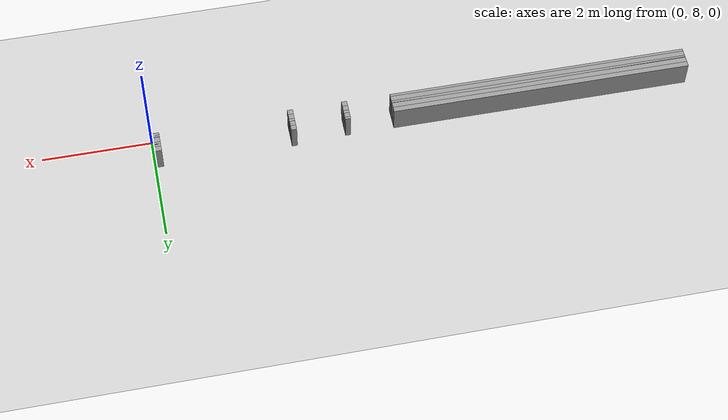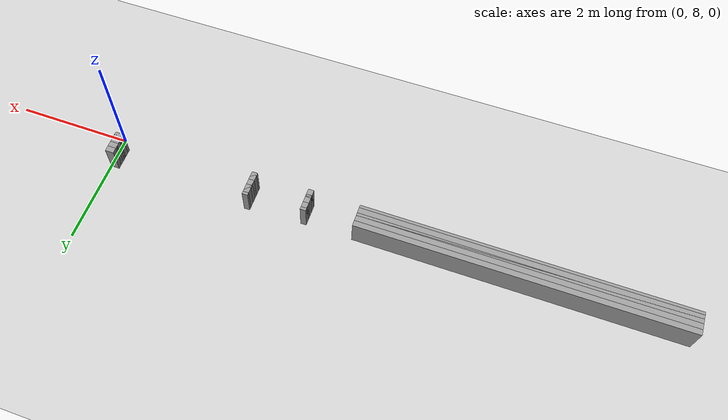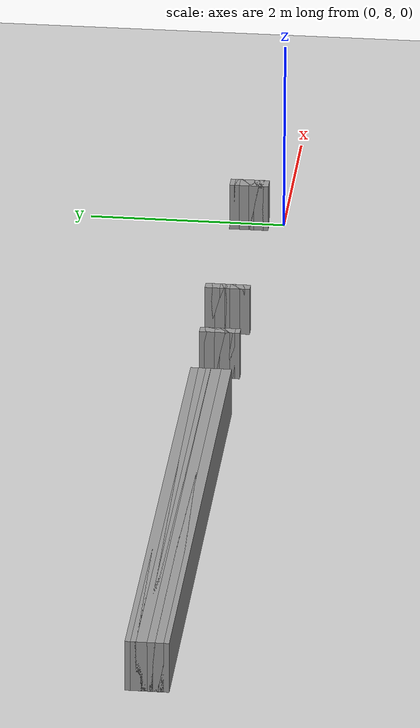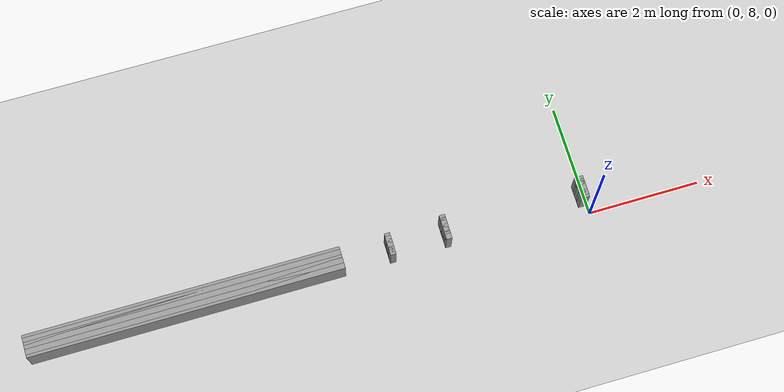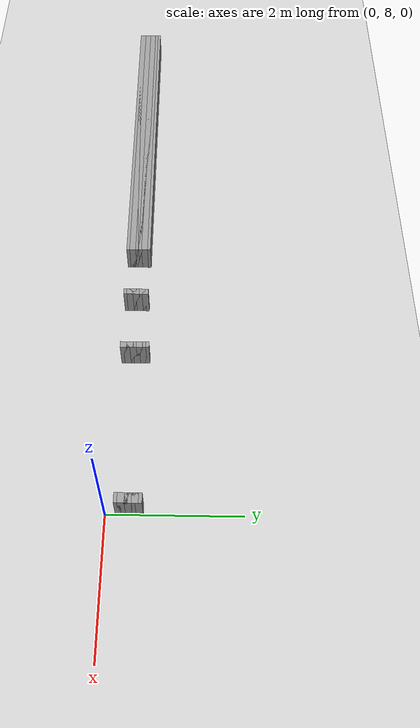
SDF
<sdf version="1.6">
 <world name="GridMap">
  <include><uri>model://sun</uri></include>
  <include><uri>model://ground_plane</uri></include>
  <model name="GridMap">
   <link name="Wall_(51.0,163.0)">
    <collision name="Wall_(51.0,163.0)_Collision">
     <geometry><box><size>0.1 0.1 0.5</size></box></geometry>
     <pose>-2.5500000000000003 8.15 0.25 0 -0 0</pose>
    </collision>
    <inertial>
     <mass>0.5</mass>
     <pose>0 0.01 0 0 0 0</pose>
     <inertia><ixx>0.004</ixx><ixy>0.001</ixy><ixz>0</ixz><iyy>0.006</iyy><iyz>0</iyz><izz>0.007</izz></inertia>
    </inertial>
    <visual name="Wall_(51.0,163.0)_Visual">
     <geometry><box><size>0.1 0.1 0.5</size></box></geometry>
     <pose>-2.5500000000000003 8.15 0.25 0 -0 0</pose>
     <material>
      <script><uri>file://media/materials/scripts/gazebo.material</uri><name>Gazebo/Grey</name></script>
      <ambient>1 1 1 1</ambient>
     </material>
     <meta><layer>0</layer></meta>
    </visual>
   </link>
   <link name="Wall_(71.0,163.0)">
    <collision name="Wall_(71.0,163.0)_Collision">
     <geometry><box><size>0.1 0.1 0.5</size></box></geometry>
     <pose>-3.5500000000000003 8.15 0.25 0 -0 0</pose>
    </collision>
    <inertial>
     <mass>0.5</mass>
     <pose>0 0.01 0 0 0 0</pose>
     <inertia><ixx>0.004</ixx><ixy>0.001</ixy><ixz>0</ixz><iyy>0.006</iyy><iyz>0</iyz><izz>0.007</izz></inertia>
    </inertial>
    <visual name="Wall_(71.0,163.0)_Visual">
     <geometry><box><size>0.1 0.1 0.5</size></box></geometry>
     <pose>-3.5500000000000003 8.15 0.25 0 -0 0</pose>
     <material>
      <script><uri>file://media/materials/scripts/gazebo.material</uri><name>Gazebo/Grey</name></script>
      <ambient>1 1 1 1</ambient>
     </material>
     <meta><layer>0</layer></meta>
    </visual>
   </link>
   <link name="Wall_(143.5,163.0)">
    <collision name="Wall_(143.5,163.0)_Collision">
     <geometry><box><size>5.550000000000001 0.1 0.5</size></box></geometry>
     <pose>-7.175000000000001 8.15 0.25 0 -0 0</pose>
    </collision>
    <inertial>
     <mass>0.5</mass>
     <pose>0 0.01 0 0 0 0</pose>
     <inertia><ixx>0.004</ixx><ixy>0.001</ixy><ixz>0</ixz><iyy>0.006</iyy><iyz>0</iyz><izz>0.007</izz></inertia>
    </inertial>
    <visual name="Wall_(143.5,163.0)_Visual">
     <geometry><box><size>5.550000000000001 0.1 0.5</size></box></geometry>
     <pose>-7.175000000000001 8.15 0.25 0 -0 0</pose>
     <material>
      <script><uri>file://media/materials/scripts/gazebo.material</uri><name>Gazebo/Grey</name></script>
      <ambient>1 1 1 1</ambient>
     </material>
     <meta><layer>0</layer></meta>
    </visual>
   </link>
   <link name="Wall_(1.5,164.0)">
    <collision name="Wall_(1.5,164.0)_Collision">
     <geometry><box><size>0.15000000000000002 0.1 0.5</size></box></geometry>
     <pose>-0.07500000000000001 8.200000000000001 0.25 0 -0 0</pose>
    </collision>
    <inertial>
     <mass>0.5</mass>
     <pose>0 0.01 0 0 0 0</pose>
     <inertia><ixx>0.004</ixx><ixy>0.001</ixy><ixz>0</ixz><iyy>0.006</iyy><iyz>0</iyz><izz>0.007</izz></inertia>
    </inertial>
    <visual name="Wall_(1.5,164.0)_Visual">
     <geometry><box><size>0.15000000000000002 0.1 0.5</size></box></geometry>
     <pose>-0.07500000000000001 8.200000000000001 0.25 0 -0 0</pose>
     <material>
      <script><uri>file://media/materials/scripts/gazebo.material</uri><name>Gazebo/Grey</name></script>
      <ambient>1 1 1 1</ambient>
     </material>
     <meta><layer>0</layer></meta>
    </visual>
   </link>
   <link name="Wall_(51.0,164.0)">
    <collision name="Wall_(51.0,164.0)_Collision">
     <geometry><box><size>0.1 0.1 0.5</size></box></geometry>
     <pose>-2.5500000000000003 8.200000000000001 0.25 0 -0 0</pose>
    </collision>
    <inertial>
     <mass>0.5</mass>
     <pose>0 0.01 0 0 0 0</pose>
     <inertia><ixx>0.004</ixx><ixy>0.001</ixy><ixz>0</ixz><iyy>0.006</iyy><iyz>0</iyz><izz>0.007</izz></inertia>
    </inertial>
    <visual name="Wall_(51.0,164.0)_Visual">
     <geometry><box><size>0.1 0.1 0.5</size></box></geometry>
     <pose>-2.5500000000000003 8.200000000000001 0.25 0 -0 0</pose>
     <material>
      <script><uri>file://media/materials/scripts/gazebo.material</uri><name>Gazebo/Grey</name></script>
      <ambient>1 1 1 1</ambient>
     </material>
     <meta><layer>0</layer></meta>
    </visual>
   </link>
   <link name="Wall_(71.0,164.0)">
    <collision name="Wall_(71.0,164.0)_Collision">
     <geometry><box><size>0.1 0.1 0.5</size></box></geometry>
     <pose>-3.5500000000000003 8.200000000000001 0.25 0 -0 0</pose>
    </collision>
    <inertial>
     <mass>0.5</mass>
     <pose>0 0.01 0 0 0 0</pose>
     <inertia><ixx>0.004</ixx><ixy>0.001</ixy><ixz>0</ixz><iyy>0.006</iyy><iyz>0</iyz><izz>0.007</izz></inertia>
    </inertial>
    <visual name="Wall_(71.0,164.0)_Visual">
     <geometry><box><size>0.1 0.1 0.5</size></box></geometry>
     <pose>-3.5500000000000003 8.200000000000001 0.25 0 -0 0</pose>
     <material>
      <script><uri>file://media/materials/scripts/gazebo.material</uri><name>Gazebo/Grey</name></script>
      <ambient>1 1 1 1</ambient>
     </material>
     <meta><layer>0</layer></meta>
    </visual>
   </link>
   <link name="Wall_(143.5,164.0)">
    <collision name="Wall_(143.5,164.0)_Collision">
     <geometry><box><size>5.550000000000001 0.1 0.5</size></box></geometry>
     <pose>-7.175000000000001 8.200000000000001 0.25 0 -0 0</pose>
    </collision>
    <inertial>
     <mass>0.5</mass>
     <pose>0 0.01 0 0 0 0</pose>
     <inertia><ixx>0.004</ixx><ixy>0.001</ixy><ixz>0</ixz><iyy>0.006</iyy><iyz>0</iyz><izz>0.007</izz></inertia>
    </inertial>
    <visual name="Wall_(143.5,164.0)_Visual">
     <geometry><box><size>5.550000000000001 0.1 0.5</size></box></geometry>
     <pose>-7.175000000000001 8.200000000000001 0.25 0 -0 0</pose>
     <material>
      <script><uri>file://media/materials/scripts/gazebo.material</uri><name>Gazebo/Grey</name></script>
      <ambient>1 1 1 1</ambient>
     </material>
     <meta><layer>0</layer></meta>
    </visual>
   </link>
   <link name="Wall_(1.5,165.0)">
    <collision name="Wall_(1.5,165.0)_Collision">
     <geometry><box><size>0.15000000000000002 0.1 0.5</size></box></geometry>
     <pose>-0.07500000000000001 8.25 0.25 0 -0 0</pose>
    </collision>
    <inertial>
     <mass>0.5</mass>
     <pose>0 0.01 0 0 0 0</pose>
     <inertia><ixx>0.004</ixx><ixy>0.001</ixy><ixz>0</ixz><iyy>0.006</iyy><iyz>0</iyz><izz>0.007</izz></inertia>
    </inertial>
    <visual name="Wall_(1.5,165.0)_Visual">
     <geometry><box><size>0.15000000000000002 0.1 0.5</size></box></geometry>
     <pose>-0.07500000000000001 8.25 0.25 0 -0 0</pose>
     <material>
      <script><uri>file://media/materials/scripts/gazebo.material</uri><name>Gazebo/Grey</name></script>
      <ambient>1 1 1 1</ambient>
     </material>
     <meta><layer>0</layer></meta>
    </visual>
   </link>
   <link name="Wall_(51.0,165.0)">
    <collision name="Wall_(51.0,165.0)_Collision">
     <geometry><box><size>0.1 0.1 0.5</size></box></geometry>
     <pose>-2.5500000000000003 8.25 0.25 0 -0 0</pose>
    </collision>
    <inertial>
     <mass>0.5</mass>
     <pose>0 0.01 0 0 0 0</pose>
     <inertia><ixx>0.004</ixx><ixy>0.001</ixy><ixz>0</ixz><iyy>0.006</iyy><iyz>0</iyz><izz>0.007</izz></inertia>
    </inertial>
    <visual name="Wall_(51.0,165.0)_Visual">
     <geometry><box><size>0.1 0.1 0.5</size></box></geometry>
     <pose>-2.5500000000000003 8.25 0.25 0 -0 0</pose>
     <material>
      <script><uri>file://media/materials/scripts/gazebo.material</uri><name>Gazebo/Grey</name></script>
      <ambient>1 1 1 1</ambient>
     </material>
     <meta><layer>0</layer></meta>
    </visual>
   </link>
   <link name="Wall_(71.0,165.0)">
    <collision name="Wall_(71.0,165.0)_Collision">
     <geometry><box><size>0.1 0.1 0.5</size></box></geometry>
     <pose>-3.5500000000000003 8.25 0.25 0 -0 0</pose>
    </collision>
    <inertial>
     <mass>0.5</mass>
     <pose>0 0.01 0 0 0 0</pose>
     <inertia><ixx>0.004</ixx><ixy>0.001</ixy><ixz>0</ixz><iyy>0.006</iyy><iyz>0</iyz><izz>0.007</izz></inertia>
    </inertial>
    <visual name="Wall_(71.0,165.0)_Visual">
     <geometry><box><size>0.1 0.1 0.5</size></box></geometry>
     <pose>-3.5500000000000003 8.25 0.25 0 -0 0</pose>
     <material>
      <script><uri>file://media/materials/scripts/gazebo.material</uri><name>Gazebo/Grey</name></script>
      <ambient>1 1 1 1</ambient>
     </material>
     <meta><layer>0</layer></meta>
    </visual>
   </link>
   <link name="Wall_(143.5,165.0)">
    <collision name="Wall_(143.5,165.0)_Collision">
     <geometry><box><size>5.550000000000001 0.1 0.5</size></box></geometry>
     <pose>-7.175000000000001 8.25 0.25 0 -0 0</pose>
    </collision>
    <inertial>
     <mass>0.5</mass>
     <pose>0 0.01 0 0 0 0</pose>
     <inertia><ixx>0.004</ixx><ixy>0.001</ixy><ixz>0</ixz><iyy>0.006</iyy><iyz>0</iyz><izz>0.007</izz></inertia>
    </inertial>
    <visual name="Wall_(143.5,165.0)_Visual">
     <geometry><box><size>5.550000000000001 0.1 0.5</size></box></geometry>
     <pose>-7.175000000000001 8.25 0.25 0 -0 0</pose>
     <material>
      <script><uri>file://media/materials/scripts/gazebo.material</uri><name>Gazebo/Grey</name></script>
      <ambient>1 1 1 1</ambient>
     </material>
     <meta><layer>0</layer></meta>
    </visual>
   </link>
   <link name="Wall_(1.5,166.0)">
    <collision name="Wall_(1.5,166.0)_Collision">
     <geometry><box><size>0.15000000000000002 0.1 0.5</size></box></geometry>
     <pose>-0.07500000000000001 8.3 0.25 0 -0 0</pose>
    </collision>
    <inertial>
     <mass>0.5</mass>
     <pose>0 0.01 0 0 0 0</pose>
     <inertia><ixx>0.004</ixx><ixy>0.001</ixy><ixz>0</ixz><iyy>0.006</iyy><iyz>0</iyz><izz>0.007</izz></inertia>
    </inertial>
    <visual name="Wall_(1.5,166.0)_Visual">
     <geometry><box><size>0.15000000000000002 0.1 0.5</size></box></geometry>
     <pose>-0.07500000000000001 8.3 0.25 0 -0 0</pose>
     <material>
      <script><uri>file://media/materials/scripts/gazebo.material</uri><name>Gazebo/Grey</name></script>
      <ambient>1 1 1 1</ambient>
     </material>
     <meta><layer>0</layer></meta>
    </visual>
   </link>
   <link name="Wall_(51.0,166.0)">
    <collision name="Wall_(51.0,166.0)_Collision">
     <geometry><box><size>0.1 0.1 0.5</size></box></geometry>
     <pose>-2.5500000000000003 8.3 0.25 0 -0 0</pose>
    </collision>
    <inertial>
     <mass>0.5</mass>
     <pose>0 0.01 0 0 0 0</pose>
     <inertia><ixx>0.004</ixx><ixy>0.001</ixy><ixz>0</ixz><iyy>0.006</iyy><iyz>0</iyz><izz>0.007</izz></inertia>
    </inertial>
    <visual name="Wall_(51.0,166.0)_Visual">
     <geometry><box><size>0.1 0.1 0.5</size></box></geometry>
     <pose>-2.5500000000000003 8.3 0.25 0 -0 0</pose>
     <material>
      <script><uri>file://media/materials/scripts/gazebo.material</uri><name>Gazebo/Grey</name></script>
      <ambient>1 1 1 1</ambient>
     </material>
     <meta><layer>0</layer></meta>
    </visual>
   </link>
   <link name="Wall_(71.0,166.0)">
    <collision name="Wall_(71.0,166.0)_Collision">
     <geometry><box><size>0.1 0.1 0.5</size></box></geometry>
     <pose>-3.5500000000000003 8.3 0.25 0 -0 0</pose>
    </collision>
    <inertial>
     <mass>0.5</mass>
     <pose>0 0.01 0 0 0 0</pose>
     <inertia><ixx>0.004</ixx><ixy>0.001</ixy><ixz>0</ixz><iyy>0.006</iyy><iyz>0</iyz><izz>0.007</izz></inertia>
    </inertial>
    <visual name="Wall_(71.0,166.0)_Visual">
     <geometry><box><size>0.1 0.1 0.5</size></box></geometry>
     <pose>-3.5500000000000003 8.3 0.25 0 -0 0</pose>
     <material>
      <script><uri>file://media/materials/scripts/gazebo.material</uri><name>Gazebo/Grey</name></script>
      <ambient>1 1 1 1</ambient>
     </material>
     <meta><layer>0</layer></meta>
    </visual>
   </link>
   <link name="Wall_(143.5,166.0)">
    <collision name="Wall_(143.5,166.0)_Collision">
     <geometry><box><size>5.550000000000001 0.1 0.5</size></box></geometry>
     <pose>-7.175000000000001 8.3 0.25 0 -0 0</pose>
    </collision>
    <inertial>
     <mass>0.5</mass>
     <pose>0 0.01 0 0 0 0</pose>
     <inertia><ixx>0.004</ixx><ixy>0.001</ixy><ixz>0</ixz><iyy>0.006</iyy><iyz>0</iyz><izz>0.007</izz></inertia>
    </inertial>
    <visual name="Wall_(143.5,166.0)_Visual">
     <geometry><box><size>5.550000000000001 0.1 0.5</size></box></geometry>
     <pose>-7.175000000000001 8.3 0.25 0 -0 0</pose>
     <material>
      <script><uri>file://media/materials/scripts/gazebo.material</uri><name>Gazebo/Grey</name></script>
      <ambient>1 1 1 1</ambient>
     </material>
     <meta><layer>0</layer></meta>
    </visual>
   </link>
   <link name="Wall_(1.5,167.0)">
    <collision name="Wall_(1.5,167.0)_Collision">
     <geometry><box><size>0.15000000000000002 0.1 0.5</size></box></geometry>
     <pose>-0.07500000000000001 8.35 0.25 0 -0 0</pose>
    </collision>
    <inertial>
     <mass>0.5</mass>
     <pose>0 0.01 0 0 0 0</pose>
     <inertia><ixx>0.004</ixx><ixy>0.001</ixy><ixz>0</ixz><iyy>0.006</iyy><iyz>0</iyz><izz>0.007</izz></inertia>
    </inertial>
    <visual name="Wall_(1.5,167.0)_Visual">
     <geometry><box><size>0.15000000000000002 0.1 0.5</size></box></geometry>
     <pose>-0.07500000000000001 8.35 0.25 0 -0 0</pose>
     <material>
      <script><uri>file://media/materials/scripts/gazebo.material</uri><name>Gazebo/Grey</name></script>
      <ambient>1 1 1 1</ambient>
     </material>
     <meta><layer>0</layer></meta>
    </visual>
   </link>
   <link name="Wall_(51.0,167.0)">
    <collision name="Wall_(51.0,167.0)_Collision">
     <geometry><box><size>0.1 0.1 0.5</size></box></geometry>
     <pose>-2.5500000000000003 8.35 0.25 0 -0 0</pose>
    </collision>
    <inertial>
     <mass>0.5</mass>
     <pose>0 0.01 0 0 0 0</pose>
     <inertia><ixx>0.004</ixx><ixy>0.001</ixy><ixz>0</ixz><iyy>0.006</iyy><iyz>0</iyz><izz>0.007</izz></inertia>
    </inertial>
    <visual name="Wall_(51.0,167.0)_Visual">
     <geometry><box><size>0.1 0.1 0.5</size></box></geometry>
     <pose>-2.5500000000000003 8.35 0.25 0 -0 0</pose>
     <material>
      <script><uri>file://media/materials/scripts/gazebo.material</uri><name>Gazebo/Grey</name></script>
      <ambient>1 1 1 1</ambient>
     </material>
     <meta><layer>0</layer></meta>
    </visual>
   </link>
   <link name="Wall_(71.0,167.0)">
    <collision name="Wall_(71.0,167.0)_Collision">
     <geometry><box><size>0.1 0.1 0.5</size></box></geometry>
     <pose>-3.5500000000000003 8.35 0.25 0 -0 0</pose>
    </collision>
    <inertial>
     <mass>0.5</mass>
     <pose>0 0.01 0 0 0 0</pose>
     <inertia><ixx>0.004</ixx><ixy>0.001</ixy><ixz>0</ixz><iyy>0.006</iyy><iyz>0</iyz><izz>0.007</izz></inertia>
    </inertial>
    <visual name="Wall_(71.0,167.0)_Visual">
     <geometry><box><size>0.1 0.1 0.5</size></box></geometry>
     <pose>-3.5500000000000003 8.35 0.25 0 -0 0</pose>
     <material>
      <script><uri>file://media/materials/scripts/gazebo.material</uri><name>Gazebo/Grey</name></script>
      <ambient>1 1 1 1</ambient>
     </material>
     <meta><layer>0</layer></meta>
    </visual>
   </link>
   <link name="Wall_(143.5,167.0)">
    <collision name="Wall_(143.5,167.0)_Collision">
     <geometry><box><size>5.550000000000001 0.1 0.5</size></box></geometry>
     <pose>-7.175000000000001 8.35 0.25 0 -0 0</pose>
    </collision>
    <inertial>
     <mass>0.5</mass>
     <pose>0 0.01 0 0 0 0</pose>
     <inertia><ixx>0.004</ixx><ixy>0.001</ixy><ixz>0</ixz><iyy>0.006</iyy><iyz>0</iyz><izz>0.007</izz></inertia>
    </inertial>
    <visual name="Wall_(143.5,167.0)_Visual">
     <geometry><box><size>5.550000000000001 0.1 0.5</size></box></geometry>
     <pose>-7.175000000000001 8.35 0.25 0 -0 0</pose>
     <material>
      <script><uri>file://media/materials/scripts/gazebo.material</uri><name>Gazebo/Grey</name></script>
      <ambient>1 1 1 1</ambient>
     </material>
     <meta><layer>0</layer></meta>
    </visual>
   </link>
   <link name="Wall_(1.5,168.0)">
    <collision name="Wall_(1.5,168.0)_Collision">
     <geometry><box><size>0.15000000000000002 0.1 0.5</size></box></geometry>
     <pose>-0.07500000000000001 8.4 0.25 0 -0 0</pose>
    </collision>
    <inertial>
     <mass>0.5</mass>
     <pose>0 0.01 0 0 0 0</pose>
     <inertia><ixx>0.004</ixx><ixy>0.001</ixy><ixz>0</ixz><iyy>0.006</iyy><iyz>0</iyz><izz>0.007</izz></inertia>
    </inertial>
    <visual name="Wall_(1.5,168.0)_Visual">
     <geometry><box><size>0.15000000000000002 0.1 0.5</size></box></geometry>
     <pose>-0.07500000000000001 8.4 0.25 0 -0 0</pose>
     <material>
      <script><uri>file://media/materials/scripts/gazebo.material</uri><name>Gazebo/Grey</name></script>
      <ambient>1 1 1 1</ambient>
     </material>
     <meta><layer>0</layer></meta>
    </visual>
   </link>
   <link name="Wall_(51.0,168.0)">
    <collision name="Wall_(51.0,168.0)_Collision">
     <geometry><box><size>0.1 0.1 0.5</size></box></geometry>
     <pose>-2.5500000000000003 8.4 0.25 0 -0 0</pose>
    </collision>
    <inertial>
     <mass>0.5</mass>
     <pose>0 0.01 0 0 0 0</pose>
     <inertia><ixx>0.004</ixx><ixy>0.001</ixy><ixz>0</ixz><iyy>0.006</iyy><iyz>0</iyz><izz>0.007</izz></inertia>
    </inertial>
    <visual name="Wall_(51.0,168.0)_Visual">
     <geometry><box><size>0.1 0.1 0.5</size></box></geometry>
     <pose>-2.5500000000000003 8.4 0.25 0 -0 0</pose>
     <material>
      <script><uri>file://media/materials/scripts/gazebo.material</uri><name>Gazebo/Grey</name></script>
      <ambient>1 1 1 1</ambient>
     </material>
     <meta><layer>0</layer></meta>
    </visual>
   </link>
   <link name="Wall_(71.0,168.0)">
    <collision name="Wall_(71.0,168.0)_Collision">
     <geometry><box><size>0.1 0.1 0.5</size></box></geometry>
     <pose>-3.5500000000000003 8.4 0.25 0 -0 0</pose>
    </collision>
    <inertial>
     <mass>0.5</mass>
     <pose>0 0.01 0 0 0 0</pose>
     <inertia><ixx>0.004</ixx><ixy>0.001</ixy><ixz>0</ixz><iyy>0.006</iyy><iyz>0</iyz><izz>0.007</izz></inertia>
    </inertial>
    <visual name="Wall_(71.0,168.0)_Visual">
     <geometry><box><size>0.1 0.1 0.5</size></box></geometry>
     <pose>-3.5500000000000003 8.4 0.25 0 -0 0</pose>
     <material>
      <script><uri>file://media/materials/scripts/gazebo.material</uri><name>Gazebo/Grey</name></script>
      <ambient>1 1 1 1</ambient>
     </material>
     <meta><layer>0</layer></meta>
    </visual>
   </link>
   <link name="Wall_(143.5,168.0)">
    <collision name="Wall_(143.5,168.0)_Collision">
     <geometry><box><size>5.550000000000001 0.1 0.5</size></box></geometry>
     <pose>-7.175000000000001 8.4 0.25 0 -0 0</pose>
    </collision>
    <inertial>
     <mass>0.5</mass>
     <pose>0 0.01 0 0 0 0</pose>
     <inertia><ixx>0.004</ixx><ixy>0.001</ixy><ixz>0</ixz><iyy>0.006</iyy><iyz>0</iyz><izz>0.007</izz></inertia>
    </inertial>
    <visual name="Wall_(143.5,168.0)_Visual">
     <geometry><box><size>5.550000000000001 0.1 0.5</size></box></geometry>
     <pose>-7.175000000000001 8.4 0.25 0 -0 0</pose>
     <material>
      <script><uri>file://media/materials/scripts/gazebo.material</uri><name>Gazebo/Grey</name></script>
      <ambient>1 1 1 1</ambient>
     </material>
     <meta><layer>0</layer></meta>
    </visual>
   </link>
   <link name="Wall_(1.5,169.0)">
    <collision name="Wall_(1.5,169.0)_Collision">
     <geometry><box><size>0.15000000000000002 0.1 0.5</size></box></geometry>
     <pose>-0.07500000000000001 8.450000000000001 0.25 0 -0 0</pose>
    </collision>
    <inertial>
     <mass>0.5</mass>
     <pose>0 0.01 0 0 0 0</pose>
     <inertia><ixx>0.004</ixx><ixy>0.001</ixy><ixz>0</ixz><iyy>0.006</iyy><iyz>0</iyz><izz>0.007</izz></inertia>
    </inertial>
    <visual name="Wall_(1.5,169.0)_Visual">
     <geometry><box><size>0.15000000000000002 0.1 0.5</size></box></geometry>
     <pose>-0.07500000000000001 8.450000000000001 0.25 0 -0 0</pose>
     <material>
      <script><uri>file://media/materials/scripts/gazebo.material</uri><name>Gazebo/Grey</name></script>
      <ambient>1 1 1 1</ambient>
     </material>
     <meta><layer>0</layer></meta>
    </visual>
   </link>
   <link name="Wall_(51.0,169.0)">
    <collision name="Wall_(51.0,169.0)_Collision">
     <geometry><box><size>0.1 0.1 0.5</size></box></geometry>
     <pose>-2.5500000000000003 8.450000000000001 0.25 0 -0 0</pose>
    </collision>
    <inertial>
     <mass>0.5</mass>
     <pose>0 0.01 0 0 0 0</pose>
     <inertia><ixx>0.004</ixx><ixy>0.001</ixy><ixz>0</ixz><iyy>0.006</iyy><iyz>0</iyz><izz>0.007</izz></inertia>
    </inertial>
    <visual name="Wall_(51.0,169.0)_Visual">
     <geometry><box><size>0.1 0.1 0.5</size></box></geometry>
     <pose>-2.5500000000000003 8.450000000000001 0.25 0 -0 0</pose>
     <material>
      <script><uri>file://media/materials/scripts/gazebo.material</uri><name>Gazebo/Grey</name></script>
      <ambient>1 1 1 1</ambient>
     </material>
     <meta><layer>0</layer></meta>
    </visual>
   </link>
   <link name="Wall_(71.0,169.0)">
    <collision name="Wall_(71.0,169.0)_Collision">
     <geometry><box><size>0.1 0.1 0.5</size></box></geometry>
     <pose>-3.5500000000000003 8.450000000000001 0.25 0 -0 0</pose>
    </collision>
    <inertial>
     <mass>0.5</mass>
     <pose>0 0.01 0 0 0 0</pose>
     <inertia><ixx>0.004</ixx><ixy>0.001</ixy><ixz>0</ixz><iyy>0.006</iyy><iyz>0</iyz><izz>0.007</izz></inertia>
    </inertial>
    <visual name="Wall_(71.0,169.0)_Visual">
     <geometry><box><size>0.1 0.1 0.5</size></box></geometry>
     <pose>-3.5500000000000003 8.450000000000001 0.25 0 -0 0</pose>
     <material>
      <script><uri>file://media/materials/scripts/gazebo.material</uri><name>Gazebo/Grey</name></script>
      <ambient>1 1 1 1</ambient>
     </material>
     <meta><layer>0</layer></meta>
    </visual>
   </link>
   <link name="Wall_(143.5,169.0)">
    <collision name="Wall_(143.5,169.0)_Collision">
     <geometry><box><size>5.550000000000001 0.1 0.5</size></box></geometry>
     <pose>-7.175000000000001 8.450000000000001 0.25 0 -0 0</pose>
    </collision>
    <inertial>
     <mass>0.5</mass>
     <pose>0 0.01 0 0 0 0</pose>
     <inertia><ixx>0.004</ixx><ixy>0.001</ixy><ixz>0</ixz><iyy>0.006</iyy><iyz>0</iyz><izz>0.007</izz></inertia>
    </inertial>
    <visual name="Wall_(143.5,169.0)_Visual">
     <geometry><box><size>5.550000000000001 0.1 0.5</size></box></geometry>
     <pose>-7.175000000000001 8.450000000000001 0.25 0 -0 0</pose>
     <material>
      <script><uri>file://media/materials/scripts/gazebo.material</uri><name>Gazebo/Grey</name></script>
      <ambient>1 1 1 1</ambient>
     </material>
     <meta><layer>0</layer></meta>
    </visual>
   </link>
   <link name="Wall_(1.5,170.0)">
    <collision name="Wall_(1.5,170.0)_Collision">
     <geometry><box><size>0.15000000000000002 0.1 0.5</size></box></geometry>
     <pose>-0.07500000000000001 8.5 0.25 0 -0 0</pose>
    </collision>
    <inertial>
     <mass>0.5</mass>
     <pose>0 0.01 0 0 0 0</pose>
     <inertia><ixx>0.004</ixx><ixy>0.001</ixy><ixz>0</ixz><iyy>0.006</iyy><iyz>0</iyz><izz>0.007</izz></inertia>
    </inertial>
    <visual name="Wall_(1.5,170.0)_Visual">
     <geometry><box><size>0.15000000000000002 0.1 0.5</size></box></geometry>
     <pose>-0.07500000000000001 8.5 0.25 0 -0 0</pose>
     <material>
      <script><uri>file://media/materials/scripts/gazebo.material</uri><name>Gazebo/Grey</name></script>
      <ambient>1 1 1 1</ambient>
     </material>
     <meta><layer>0</layer></meta>
    </visual>
   </link>
   <link name="Wall_(51.0,170.0)">
    <collision name="Wall_(51.0,170.0)_Collision">
     <geometry><box><size>0.1 0.1 0.5</size></box></geometry>
     <pose>-2.5500000000000003 8.5 0.25 0 -0 0</pose>
    </collision>
    <inertial>
     <mass>0.5</mass>
     <pose>0 0.01 0 0 0 0</pose>
     <inertia><ixx>0.004</ixx><ixy>0.001</ixy><ixz>0</ixz><iyy>0.006</iyy><iyz>0</iyz><izz>0.007</izz></inertia>
    </inertial>
    <visual name="Wall_(51.0,170.0)_Visual">
     <geometry><box><size>0.1 0.1 0.5</size></box></geometry>
     <pose>-2.5500000000000003 8.5 0.25 0 -0 0</pose>
     <material>
      <script><uri>file://media/materials/scripts/gazebo.material</uri><name>Gazebo/Grey</name></script>
      <ambient>1 1 1 1</ambient>
     </material>
     <meta><layer>0</layer></meta>
    </visual>
   </link>
   <static>1</static>
  </model>
 </world>
</sdf>
